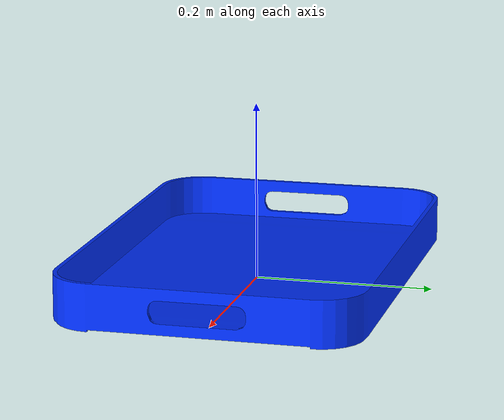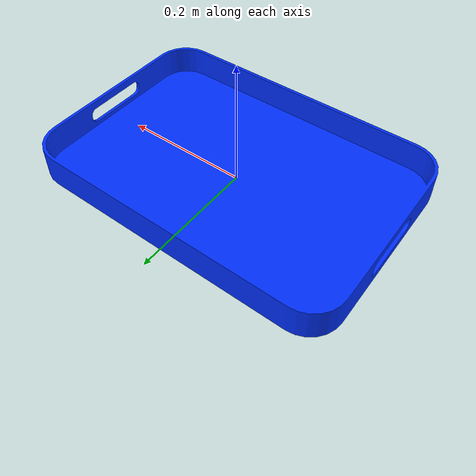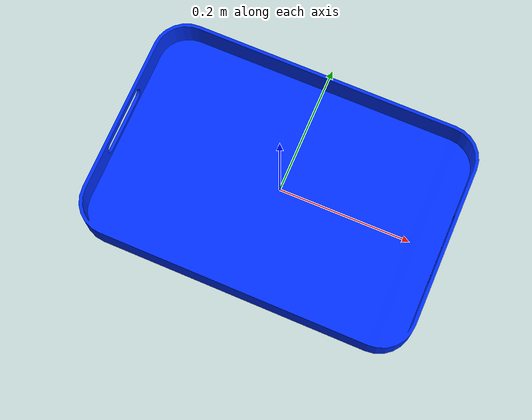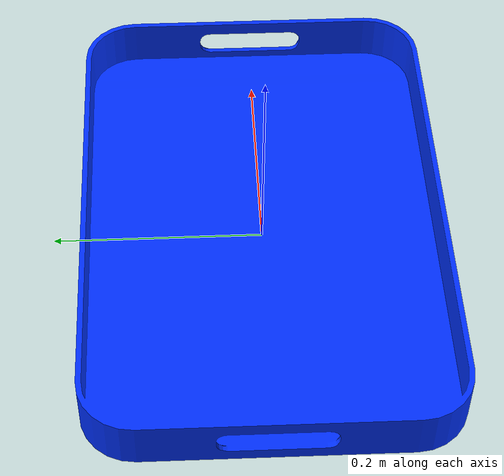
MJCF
<mujoco model="plastic_tray">
  <default>
    <default class="visual">
      <geom group="2" type="mesh" contype="0" conaffinity="0"/>
    </default>
    <default class="collision">
      <geom group="3" type="mesh"/>
    </default>
  </default>
  <asset>
    <material name="Scene_-_Root" specular="0.5" shininess="0.5" rgba="0.0 0.188 1.0 1.0"/>
    <mesh file="plastic_tray.obj"/>
    <mesh file="plastic_tray_collision_0.obj"/>
    <mesh file="plastic_tray_collision_1.obj"/>
    <mesh file="plastic_tray_collision_2.obj"/>
    <mesh file="plastic_tray_collision_3.obj"/>
    <mesh file="plastic_tray_collision_4.obj"/>
    <mesh file="plastic_tray_collision_5.obj"/>
    <mesh file="plastic_tray_collision_6.obj"/>
    <mesh file="plastic_tray_collision_7.obj"/>
    <mesh file="plastic_tray_collision_8.obj"/>
    <mesh file="plastic_tray_collision_9.obj"/>
    <mesh file="plastic_tray_collision_10.obj"/>
    <mesh file="plastic_tray_collision_11.obj"/>
    <mesh file="plastic_tray_collision_12.obj"/>
    <mesh file="plastic_tray_collision_13.obj"/>
    <mesh file="plastic_tray_collision_14.obj"/>
    <mesh file="plastic_tray_collision_15.obj"/>
    <mesh file="plastic_tray_collision_16.obj"/>
    <mesh file="plastic_tray_collision_17.obj"/>
    <mesh file="plastic_tray_collision_18.obj"/>
  </asset>
  <worldbody>
    <body name="plastic_tray">
      <geom material="Scene_-_Root" mesh="plastic_tray" class="visual"/>
      <geom mesh="plastic_tray_collision_0" rgba="0.2926464310846024 0.6933596182519725 0.6512364499881491 1" class="collision"/>
      <geom mesh="plastic_tray_collision_1" rgba="0.05977715941432338 0.13648964807063224 0.3653005488144375 1" class="collision"/>
      <geom mesh="plastic_tray_collision_2" rgba="0.7622713142831377 0.3143409975538586 0.034838496006220576 1" class="collision"/>
      <geom mesh="plastic_tray_collision_3" rgba="0.8647563786287354 0.970339718694574 0.21238506339546115 1" class="collision"/>
      <geom mesh="plastic_tray_collision_4" rgba="0.9404505893631658 0.36306418337218394 0.6419925265426905 1" class="collision"/>
      <geom mesh="plastic_tray_collision_5" rgba="0.36806346873532003 0.8509167575514661 0.1336960307574152 1" class="collision"/>
      <geom mesh="plastic_tray_collision_6" rgba="0.8186913020313109 0.28034596396058864 0.12191986110137543 1" class="collision"/>
      <geom mesh="plastic_tray_collision_7" rgba="0.32743525557094944 0.09167349980857697 0.6454718657265803 1" class="collision"/>
      <geom mesh="plastic_tray_collision_8" rgba="0.7874543964093276 0.5786416183200335 0.13422679402058268 1" class="collision"/>
      <geom mesh="plastic_tray_collision_9" rgba="0.6493921072746868 0.9871252730023414 0.22442047709401836 1" class="collision"/>
      <geom mesh="plastic_tray_collision_10" rgba="0.7012364001065878 0.7241002750557607 0.8394466719066325 1" class="collision"/>
      <geom mesh="plastic_tray_collision_11" rgba="0.44852828086596297 0.6097502735038701 0.15973752782416173 1" class="collision"/>
      <geom mesh="plastic_tray_collision_12" rgba="0.3458203879889662 0.5455667472170839 0.32581925490416264 1" class="collision"/>
      <geom mesh="plastic_tray_collision_13" rgba="0.8544093794042854 0.8271410863806951 0.8378040287635576 1" class="collision"/>
      <geom mesh="plastic_tray_collision_14" rgba="0.1294212082749876 0.5047667435741712 0.7623011487694425 1" class="collision"/>
      <geom mesh="plastic_tray_collision_15" rgba="0.11357820329120882 0.7016162391361417 0.6246011386001509 1" class="collision"/>
      <geom mesh="plastic_tray_collision_16" rgba="0.4708000193195986 0.30215413983151795 0.9679229837178073 1" class="collision"/>
      <geom mesh="plastic_tray_collision_17" rgba="0.03461991218959659 0.8454856987942089 0.24662750099643016 1" class="collision"/>
      <geom mesh="plastic_tray_collision_18" rgba="0.096937512538387 0.669187903898981 0.7203979308644851 1" class="collision"/>
    </body>
  </worldbody>
</mujoco>
